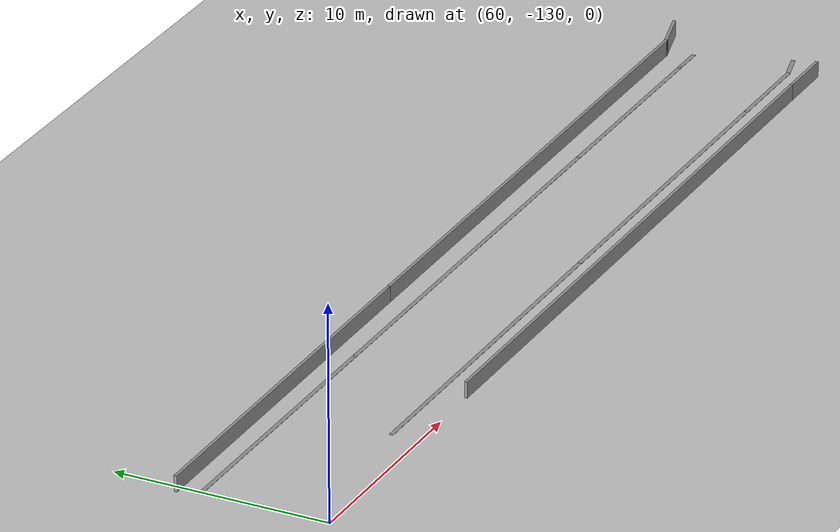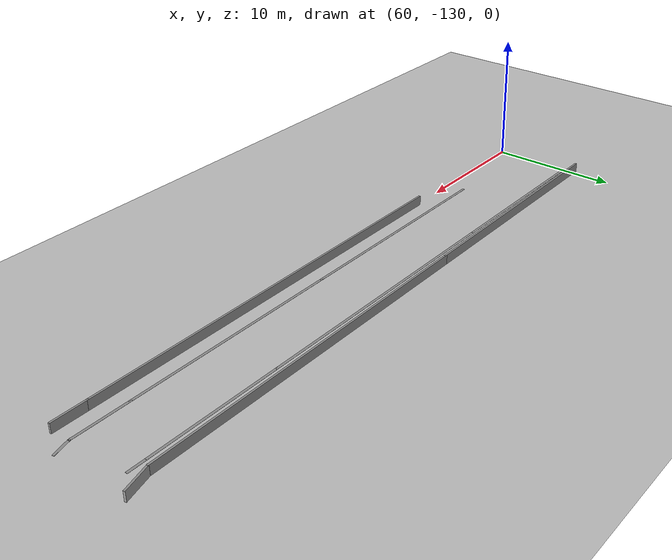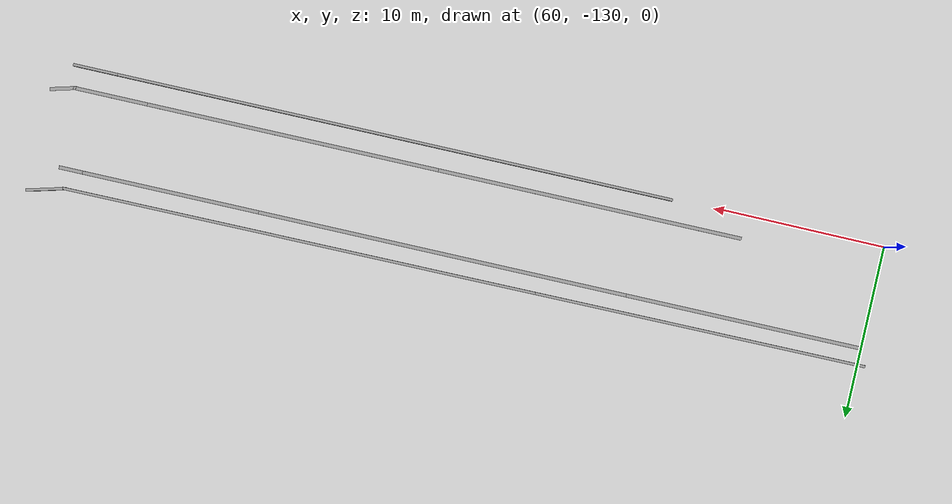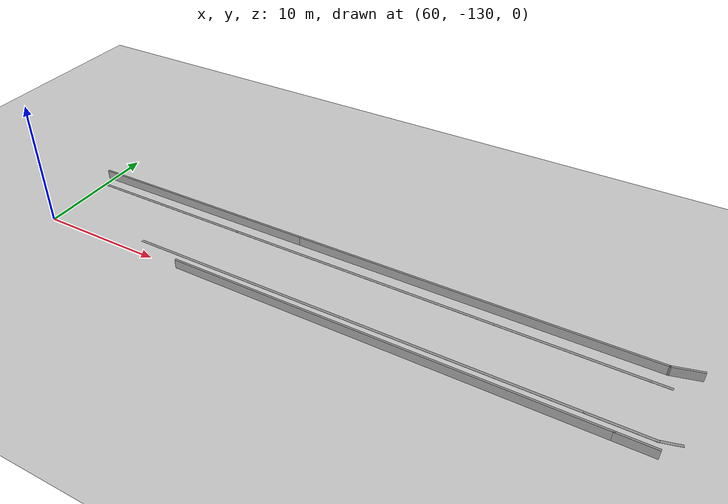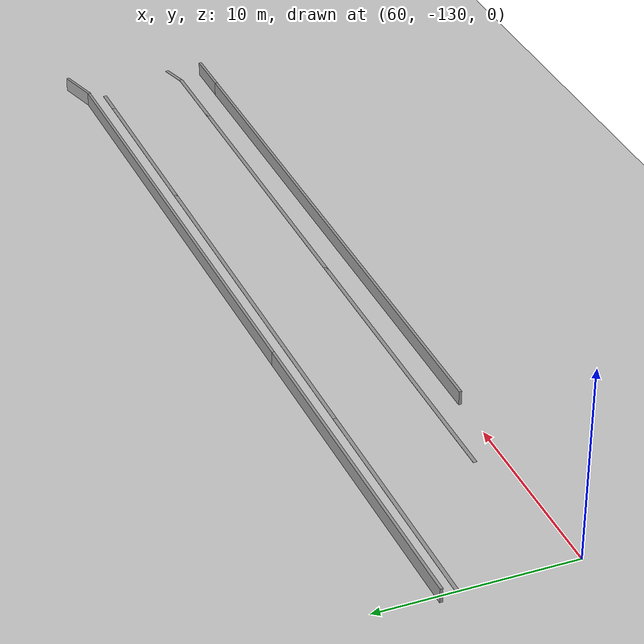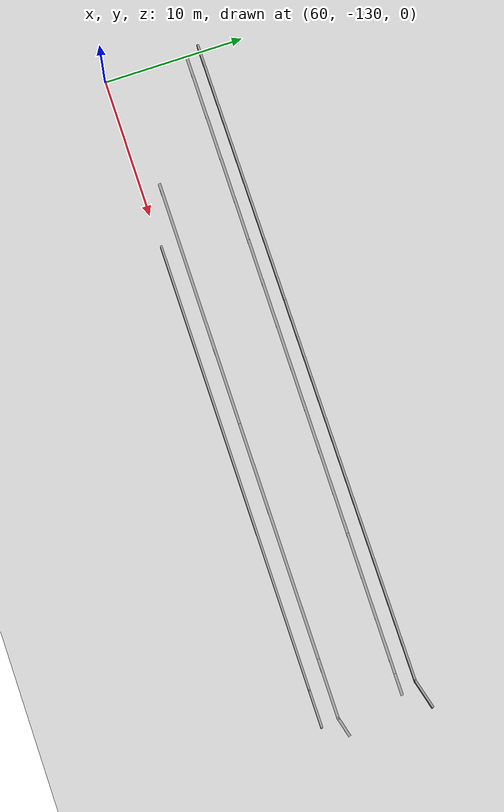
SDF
<sdf version="1.6">
 <world name="default">
  <model name="ground_plane">
   <static>1</static>
   <link name="link">
    <collision name="collision">
     <geometry><plane><normal>0 0 1</normal><size>100 100</size></plane></geometry>
     <surface>
      <contact><collide_bitmask>65535</collide_bitmask></contact>
      <friction><ode><mu>100</mu><mu2>50</mu2></ode></friction>
     </surface>
    </collision>
    <visual name="visual">
     <cast_shadows>0</cast_shadows>
     <geometry><plane><normal>0 0 1</normal><size>100 100</size></plane></geometry>
     <material>
      <script><uri>file://media/materials/scripts/gazebo.material</uri><name>Gazebo/Grey</name></script>
     </material>
    </visual>
   </link>
  </model>
  <model name="GercekDuvarSeritKoyu1">
   <link name="Wall_168">
    <pose>68.3531 9.23141 0 0 -0 1.57445</pose>
    <inertial>
     <mass>1</mass>
     <inertia><ixx>1</ixx><ixy>0</ixy><ixz>0</ixz><iyy>1</iyy><iyz>0</iyz><izz>1</izz></inertia>
    </inertial>
    <visual name="Wall_168_Visual">
     <pose>0 0 0.375 0 -0 0</pose>
     <geometry><box><size>19.2961 0.15 0.75</size></box></geometry>
     <material>
      <script><uri>file://media/materials/scripts/gazebo.material</uri><name>Gazebo/Grey</name></script>
      <ambient>0.5 0.5 0.5 1</ambient>
      <shader type="pixel"><normal_map>__default__</normal_map></shader>
      <diffuse>0.7 0.7 0.7 1</diffuse>
      <specular>0.01 0.01 0.01 1</specular>
      <emissive>0 0 0 1</emissive>
     </material>
     <meta><layer>0</layer></meta>
    </visual>
    <collision name="Wall_168_Collision">
     <pose>0 0 0.375 0 -0 0</pose>
     <geometry><box><size>19.2961 0.15 0.75</size></box></geometry>
     <surface>
      <friction>
       <ode><mu>1</mu><mu2>1</mu2><fdir1>0 0 0</fdir1><slip1>0</slip1><slip2>0</slip2></ode>
       <torsional>
        <coefficient>1</coefficient>
        <patch_radius>0</patch_radius>
        <surface_radius>0</surface_radius>
        <use_patch_radius>1</use_patch_radius>
        <ode><slip>0</slip></ode>
       </torsional>
      </friction>
      <bounce><restitution_coefficient>0</restitution_coefficient><threshold>1e+06</threshold></bounce>
      <contact>
       <collide_without_contact>0</collide_without_contact>
       <collide_without_contact_bitmask>1</collide_without_contact_bitmask>
       <collide_bitmask>1</collide_bitmask>
       <ode>
        <soft_cfm>0</soft_cfm>
        <soft_erp>0.2</soft_erp>
        <kp>1e+13</kp>
        <kd>1</kd>
        <max_vel>0.01</max_vel>
        <min_depth>0</min_depth>
       </ode>
       <bullet>
        <split_impulse>1</split_impulse>
        <split_impulse_penetration_threshold>-0.01</split_impulse_penetration_threshold>
        <soft_cfm>0</soft_cfm>
        <soft_erp>0.2</soft_erp>
        <kp>1e+13</kp>
        <kd>1</kd>
       </bullet>
      </contact>
     </surface>
    </collision>
   </link>
   <link name="Wall_170">
    <pose>68.2721 32.6274 0 0 -0 1.57412</pose>
    <inertial>
     <mass>1</mass>
     <inertia><ixx>1</ixx><ixy>0</ixy><ixz>0</ixz><iyy>1</iyy><iyz>0</iyz><izz>1</izz></inertia>
    </inertial>
    <visual name="Wall_170_Visual">
     <pose>0 0 0.375 0 -0 0</pose>
     <geometry><box><size>27.796 0.15 0.75</size></box></geometry>
     <material>
      <script><uri>file://media/materials/scripts/gazebo.material</uri><name>Gazebo/Grey</name></script>
      <ambient>0.5 0.5 0.5 1</ambient>
      <shader type="pixel"><normal_map>__default__</normal_map></shader>
      <diffuse>0.7 0.7 0.7 1</diffuse>
      <specular>0.01 0.01 0.01 1</specular>
      <emissive>0 0 0 1</emissive>
     </material>
     <meta><layer>0</layer></meta>
    </visual>
    <collision name="Wall_170_Collision">
     <pose>0 0 0.375 0 -0 0</pose>
     <geometry><box><size>27.796 0.15 0.75</size></box></geometry>
     <surface>
      <friction>
       <ode><mu>1</mu><mu2>1</mu2><fdir1>0 0 0</fdir1><slip1>0</slip1><slip2>0</slip2></ode>
       <torsional>
        <coefficient>1</coefficient>
        <patch_radius>0</patch_radius>
        <surface_radius>0</surface_radius>
        <use_patch_radius>1</use_patch_radius>
        <ode><slip>0</slip></ode>
       </torsional>
      </friction>
      <bounce><restitution_coefficient>0</restitution_coefficient><threshold>1e+06</threshold></bounce>
      <contact>
       <collide_without_contact>0</collide_without_contact>
       <collide_without_contact_bitmask>1</collide_without_contact_bitmask>
       <collide_bitmask>1</collide_bitmask>
       <ode>
        <soft_cfm>0</soft_cfm>
        <soft_erp>0.2</soft_erp>
        <kp>1e+13</kp>
        <kd>1</kd>
        <max_vel>0.01</max_vel>
        <min_depth>0</min_depth>
       </ode>
       <bullet>
        <split_impulse>1</split_impulse>
        <split_impulse_penetration_threshold>-0.01</split_impulse_penetration_threshold>
        <soft_cfm>0</soft_cfm>
        <soft_erp>0.2</soft_erp>
        <kp>1e+13</kp>
        <kd>1</kd>
       </bullet>
      </contact>
     </surface>
    </collision>
   </link>
   <link name="Wall_172">
    <pose>67.9541 47.4644 0 0 -0 1.83287</pose>
    <inertial>
     <mass>1</mass>
     <inertia><ixx>1</ixx><ixy>0</ixy><ixz>0</ixz><iyy>1</iyy><iyz>0</iyz><izz>1</izz></inertia>
    </inertial>
    <visual name="Wall_172_Visual">
     <pose>0 0 0.375 0 -0 0</pose>
     <geometry><box><size>2.25 0.15 0.75</size></box></geometry>
     <material>
      <script><uri>file://media/materials/scripts/gazebo.material</uri><name>Gazebo/Grey</name></script>
      <ambient>0.5 0.5 0.5 1</ambient>
      <shader type="pixel"><normal_map>__default__</normal_map></shader>
      <diffuse>0.7 0.7 0.7 1</diffuse>
      <specular>0.01 0.01 0.01 1</specular>
      <emissive>0 0 0 1</emissive>
     </material>
     <meta><layer>0</layer></meta>
    </visual>
    <collision name="Wall_172_Collision">
     <pose>0 0 0.375 0 -0 0</pose>
     <geometry><box><size>2.25 0.15 0.75</size></box></geometry>
     <surface>
      <friction>
       <ode><mu>1</mu><mu2>1</mu2><fdir1>0 0 0</fdir1><slip1>0</slip1><slip2>0</slip2></ode>
       <torsional>
        <coefficient>1</coefficient>
        <patch_radius>0</patch_radius>
        <surface_radius>0</surface_radius>
        <use_patch_radius>1</use_patch_radius>
        <ode><slip>0</slip></ode>
       </torsional>
      </friction>
      <bounce><restitution_coefficient>0</restitution_coefficient><threshold>1e+06</threshold></bounce>
      <contact>
       <collide_without_contact>0</collide_without_contact>
       <collide_without_contact_bitmask>1</collide_without_contact_bitmask>
       <collide_bitmask>1</collide_bitmask>
       <ode>
        <soft_cfm>0</soft_cfm>
        <soft_erp>0.2</soft_erp>
        <kp>1e+13</kp>
        <kd>1</kd>
        <max_vel>0.01</max_vel>
        <min_depth>0</min_depth>
       </ode>
       <bullet>
        <split_impulse>1</split_impulse>
        <split_impulse_penetration_threshold>-0.01</split_impulse_penetration_threshold>
        <soft_cfm>0</soft_cfm>
        <soft_erp>0.2</soft_erp>
        <kp>1e+13</kp>
        <kd>1</kd>
       </bullet>
      </contact>
     </surface>
    </collision>
   </link>
   <link name="Wall_22">
    <pose>75.2501 28.6434 0 0 -0 1.5708</pose>
    <inertial>
     <mass>1</mass>
     <inertia><ixx>1</ixx><ixy>0</ixy><ixz>0</ixz><iyy>1</iyy><iyz>0</iyz><izz>1</izz></inertia>
    </inertial>
    <visual name="Wall_22_Visual">
     <pose>0 0 0.375 0 -0 0</pose>
     <geometry><box><size>32.5 0.15 0.75</size></box></geometry>
     <material>
      <script><uri>file://media/materials/scripts/gazebo.material</uri><name>Gazebo/Grey</name></script>
      <ambient>0.5 0.5 0.5 1</ambient>
      <shader type="pixel"><normal_map>__default__</normal_map></shader>
      <diffuse>0.7 0.7 0.7 1</diffuse>
      <specular>0.01 0.01 0.01 1</specular>
      <emissive>0 0 0 1</emissive>
     </material>
     <meta><layer>0</layer></meta>
    </visual>
    <collision name="Wall_22_Collision">
     <pose>0 0 0.375 0 -0 0</pose>
     <geometry><box><size>32.5 0.15 0.75</size></box></geometry>
     <surface>
      <friction>
       <ode><mu>1</mu><mu2>1</mu2><fdir1>0 0 0</fdir1><slip1>0</slip1><slip2>0</slip2></ode>
       <torsional>
        <coefficient>1</coefficient>
        <patch_radius>0</patch_radius>
        <surface_radius>0</surface_radius>
        <use_patch_radius>1</use_patch_radius>
        <ode><slip>0</slip></ode>
       </torsional>
      </friction>
      <bounce><restitution_coefficient>0</restitution_coefficient><threshold>1e+06</threshold></bounce>
      <contact>
       <collide_without_contact>0</collide_without_contact>
       <collide_without_contact_bitmask>1</collide_without_contact_bitmask>
       <collide_bitmask>1</collide_bitmask>
       <ode>
        <soft_cfm>0</soft_cfm>
        <soft_erp>0.2</soft_erp>
        <kp>1e+13</kp>
        <kd>1</kd>
        <max_vel>0.01</max_vel>
        <min_depth>0</min_depth>
       </ode>
       <bullet>
        <split_impulse>1</split_impulse>
        <split_impulse_penetration_threshold>-0.01</split_impulse_penetration_threshold>
        <soft_cfm>0</soft_cfm>
        <soft_erp>0.2</soft_erp>
        <kp>1e+13</kp>
        <kd>1</kd>
       </bullet>
      </contact>
     </surface>
    </collision>
   </link>
   <link name="Wall_24">
    <pose>75.2501 46.1184 0 0 -0 1.5708</pose>
    <inertial>
     <mass>1</mass>
     <inertia><ixx>1</ixx><ixy>0</ixy><ixz>0</ixz><iyy>1</iyy><iyz>0</iyz><izz>1</izz></inertia>
    </inertial>
    <visual name="Wall_24_Visual">
     <pose>0 0 0.375 0 -0 0</pose>
     <geometry><box><size>2.75 0.15 0.75</size></box></geometry>
     <material>
      <script><uri>file://media/materials/scripts/gazebo.material</uri><name>Gazebo/Grey</name></script>
      <ambient>0.5 0.5 0.5 1</ambient>
      <shader type="pixel"><normal_map>__default__</normal_map></shader>
      <diffuse>0.7 0.7 0.7 1</diffuse>
      <specular>0.01 0.01 0.01 1</specular>
      <emissive>0 0 0 1</emissive>
     </material>
     <meta><layer>0</layer></meta>
    </visual>
    <collision name="Wall_24_Collision">
     <pose>0 0 0.375 0 -0 0</pose>
     <geometry><box><size>2.75 0.15 0.75</size></box></geometry>
     <surface>
      <friction>
       <ode><mu>1</mu><mu2>1</mu2><fdir1>0 0 0</fdir1><slip1>0</slip1><slip2>0</slip2></ode>
       <torsional>
        <coefficient>1</coefficient>
        <patch_radius>0</patch_radius>
        <surface_radius>0</surface_radius>
        <use_patch_radius>1</use_patch_radius>
        <ode><slip>0</slip></ode>
       </torsional>
      </friction>
      <bounce><restitution_coefficient>0</restitution_coefficient><threshold>1e+06</threshold></bounce>
      <contact>
       <collide_without_contact>0</collide_without_contact>
       <collide_without_contact_bitmask>1</collide_without_contact_bitmask>
       <collide_bitmask>1</collide_bitmask>
       <ode>
        <soft_cfm>0</soft_cfm>
        <soft_erp>0.2</soft_erp>
        <kp>1e+13</kp>
        <kd>1</kd>
        <max_vel>0.01</max_vel>
        <min_depth>0</min_depth>
       </ode>
       <bullet>
        <split_impulse>1</split_impulse>
        <split_impulse_penetration_threshold>-0.01</split_impulse_penetration_threshold>
        <soft_cfm>0</soft_cfm>
        <soft_erp>0.2</soft_erp>
        <kp>1e+13</kp>
        <kd>1</kd>
       </bullet>
      </contact>
     </surface>
    </collision>
   </link>
   <link name="Wall_266">
    <pose>73.9771 16.9264 0 0 -0 1.5708</pose>
    <visual name="Wall_266_Visual">
     <pose>0 0 0.005 0 -0 0</pose>
     <geometry><box><size>17.8 0.2 0.01</size></box></geometry>
     <material>
      <script><uri>file://media/materials/scripts/gazebo.material</uri><name>Gazebo/Grey</name></script>
      <ambient>1 1 1 1</ambient>
      <shader type="pixel"/>
     </material>
     <meta><layer>0</layer></meta>
    </visual>
    <collision name="Wall_266_Collision">
     <pose>0 0 0.005 0 -0 0</pose>
     <geometry><box><size>17.8 0.2 0.01</size></box></geometry>
     <surface>
      <friction>
       <ode><mu>1</mu><mu2>1</mu2><fdir1>0 0 0</fdir1><slip1>0</slip1><slip2>0</slip2></ode>
       <torsional>
        <coefficient>1</coefficient>
        <patch_radius>0</patch_radius>
        <surface_radius>0</surface_radius>
        <use_patch_radius>1</use_patch_radius>
        <ode><slip>0</slip></ode>
       </torsional>
      </friction>
      <bounce><restitution_coefficient>0</restitution_coefficient><threshold>1e+06</threshold></bounce>
      <contact>
       <collide_without_contact>0</collide_without_contact>
       <collide_without_contact_bitmask>1</collide_without_contact_bitmask>
       <collide_bitmask>1</collide_bitmask>
       <ode>
        <soft_cfm>0</soft_cfm>
        <soft_erp>0.2</soft_erp>
        <kp>1e+13</kp>
        <kd>1</kd>
        <max_vel>0.01</max_vel>
        <min_depth>0</min_depth>
       </ode>
       <bullet>
        <split_impulse>1</split_impulse>
        <split_impulse_penetration_threshold>-0.01</split_impulse_penetration_threshold>
        <soft_cfm>0</soft_cfm>
        <soft_erp>0.2</soft_erp>
        <kp>1e+13</kp>
        <kd>1</kd>
       </bullet>
      </contact>
     </surface>
    </collision>
   </link>
   <link name="Wall_268">
    <pose>73.9771 34.2764 0 0 -0 1.5708</pose>
    <visual name="Wall_268_Visual">
     <pose>0 0 0.005 0 -0 0</pose>
     <geometry><box><size>17.3 0.2 0.01</size></box></geometry>
     <material>
      <script><uri>file://media/materials/scripts/gazebo.material</uri><name>Gazebo/Grey</name></script>
      <ambient>1 1 1 1</ambient>
      <shader type="pixel"/>
     </material>
     <meta><layer>0</layer></meta>
    </visual>
    <collision name="Wall_268_Collision">
     <pose>0 0 0.005 0 -0 0</pose>
     <geometry><box><size>17.3 0.2 0.01</size></box></geometry>
     <surface>
      <friction>
       <ode><mu>1</mu><mu2>1</mu2><fdir1>0 0 0</fdir1><slip1>0</slip1><slip2>0</slip2></ode>
       <torsional>
        <coefficient>1</coefficient>
        <patch_radius>0</patch_radius>
        <surface_radius>0</surface_radius>
        <use_patch_radius>1</use_patch_radius>
        <ode><slip>0</slip></ode>
       </torsional>
      </friction>
      <bounce><restitution_coefficient>0</restitution_coefficient><threshold>1e+06</threshold></bounce>
      <contact>
       <collide_without_contact>0</collide_without_contact>
       <collide_without_contact_bitmask>1</collide_without_contact_bitmask>
       <collide_bitmask>1</collide_bitmask>
       <ode>
        <soft_cfm>0</soft_cfm>
        <soft_erp>0.2</soft_erp>
        <kp>1e+13</kp>
        <kd>1</kd>
        <max_vel>0.01</max_vel>
        <min_depth>0</min_depth>
       </ode>
       <bullet>
        <split_impulse>1</split_impulse>
        <split_impulse_penetration_threshold>-0.01</split_impulse_penetration_threshold>
        <soft_cfm>0</soft_cfm>
        <soft_erp>0.2</soft_erp>
        <kp>1e+13</kp>
        <kd>1</kd>
       </bullet>
      </contact>
     </surface>
    </collision>
   </link>
   <link name="Wall_270">
    <pose>73.9771 45.0014 0 0 -0 1.5708</pose>
    <visual name="Wall_270_Visual">
     <pose>0 0 0.005 0 -0 0</pose>
     <geometry><box><size>4.55 0.2 0.01</size></box></geometry>
     <material>
      <script><uri>file://media/materials/scripts/gazebo.material</uri><name>Gazebo/Grey</name></script>
      <ambient>1 1 1 1</ambient>
      <shader type="pixel"/>
     </material>
     <meta><layer>0</layer></meta>
    </visual>
    <collision name="Wall_270_Collision">
     <pose>0 0 0.005 0 -0 0</pose>
     <geometry><box><size>4.55 0.2 0.01</size></box></geometry>
     <surface>
      <friction>
       <ode><mu>1</mu><mu2>1</mu2><fdir1>0 0 0</fdir1><slip1>0</slip1><slip2>0</slip2></ode>
       <torsional>
        <coefficient>1</coefficient>
        <patch_radius>0</patch_radius>
        <surface_radius>0</surface_radius>
        <use_patch_radius>1</use_patch_radius>
        <ode><slip>0</slip></ode>
       </torsional>
      </friction>
      <bounce><restitution_coefficient>0</restitution_coefficient><threshold>1e+06</threshold></bounce>
      <contact>
       <collide_without_contact>0</collide_without_contact>
       <collide_without_contact_bitmask>1</collide_without_contact_bitmask>
       <collide_bitmask>1</collide_bitmask>
       <ode>
        <soft_cfm>0</soft_cfm>
        <soft_erp>0.2</soft_erp>
        <kp>1e+13</kp>
        <kd>1</kd>
        <max_vel>0.01</max_vel>
        <min_depth>0</min_depth>
       </ode>
       <bullet>
        <split_impulse>1</split_impulse>
        <split_impulse_penetration_threshold>-0.01</split_impulse_penetration_threshold>
        <soft_cfm>0</soft_cfm>
        <soft_erp>0.2</soft_erp>
        <kp>1e+13</kp>
        <kd>1</kd>
       </bullet>
      </contact>
     </surface>
    </collision>
   </link>
   <link name="Wall_272">
    <pose>73.8026 47.8284 0 0 -0 1.83231</pose>
    <visual name="Wall_272_Visual">
     <pose>0 0 0.005 0 -0 0</pose>
     <geometry><box><size>1.5499 0.2 0.01</size></box></geometry>
     <material>
      <script><uri>file://media/materials/scripts/gazebo.material</uri><name>Gazebo/Grey</name></script>
      <ambient>1 1 1 1</ambient>
      <shader type="pixel"/>
     </material>
     <meta><layer>0</layer></meta>
    </visual>
    <collision name="Wall_272_Collision">
     <pose>0 0 0.005 0 -0 0</pose>
     <geometry><box><size>1.5499 0.2 0.01</size></box></geometry>
     <surface>
      <friction>
       <ode><mu>1</mu><mu2>1</mu2><fdir1>0 0 0</fdir1><slip1>0</slip1><slip2>0</slip2></ode>
       <torsional>
        <coefficient>1</coefficient>
        <patch_radius>0</patch_radius>
        <surface_radius>0</surface_radius>
        <use_patch_radius>1</use_patch_radius>
        <ode><slip>0</slip></ode>
       </torsional>
      </friction>
      <bounce><restitution_coefficient>0</restitution_coefficient><threshold>1e+06</threshold></bounce>
      <contact>
       <collide_without_contact>0</collide_without_contact>
       <collide_without_contact_bitmask>1</collide_without_contact_bitmask>
       <collide_bitmask>1</collide_bitmask>
       <ode>
        <soft_cfm>0</soft_cfm>
        <soft_erp>0.2</soft_erp>
        <kp>1e+13</kp>
        <kd>1</kd>
        <max_vel>0.01</max_vel>
        <min_depth>0</min_depth>
       </ode>
       <bullet>
        <split_impulse>1</split_impulse>
        <split_impulse_penetration_threshold>-0.01</split_impulse_penetration_threshold>
        <soft_cfm>0</soft_cfm>
        <soft_erp>0.2</soft_erp>
        <kp>1e+13</kp>
        <kd>1</kd>
       </bullet>
      </contact>
     </surface>
    </collision>
   </link>
   <link name="Wall_490">
    <pose>69.3511 6.85541 0 0 -0 1.5708</pose>
    <visual name="Wall_490_Visual">
     <pose>0 0 0.005 0 -0 0</pose>
     <geometry><box><size>13.8 0.2 0.01</size></box></geometry>
     <material>
      <script><uri>file://media/materials/scripts/gazebo.material</uri><name>Gazebo/Grey</name></script>
      <ambient>1 1 1 1</ambient>
      <shader type="pixel"/>
     </material>
     <meta><layer>0</layer></meta>
    </visual>
    <collision name="Wall_490_Collision">
     <pose>0 0 0.005 0 -0 0</pose>
     <geometry><box><size>13.8 0.2 0.01</size></box></geometry>
     <surface>
      <friction>
       <ode><mu>1</mu><mu2>1</mu2><fdir1>0 0 0</fdir1><slip1>0</slip1><slip2>0</slip2></ode>
       <torsional>
        <coefficient>1</coefficient>
        <patch_radius>0</patch_radius>
        <surface_radius>0</surface_radius>
        <use_patch_radius>1</use_patch_radius>
        <ode><slip>0</slip></ode>
       </torsional>
      </friction>
      <bounce><restitution_coefficient>0</restitution_coefficient><threshold>1e+06</threshold></bounce>
      <contact>
       <collide_without_contact>0</collide_without_contact>
       <collide_without_contact_bitmask>1</collide_without_contact_bitmask>
       <collide_bitmask>1</collide_bitmask>
       <ode>
        <soft_cfm>0</soft_cfm>
        <soft_erp>0.2</soft_erp>
        <kp>1e+13</kp>
        <kd>1</kd>
        <max_vel>0.01</max_vel>
        <min_depth>0</min_depth>
       </ode>
       <bullet>
        <split_impulse>1</split_impulse>
        <split_impulse_penetration_threshold>-0.01</split_impulse_penetration_threshold>
        <soft_cfm>0</soft_cfm>
        <soft_erp>0.2</soft_erp>
        <kp>1e+13</kp>
        <kd>1</kd>
       </bullet>
      </contact>
     </surface>
    </collision>
   </link>
   <link name="Wall_492">
    <pose>69.3511 24.4554 0 0 -0 1.5708</pose>
    <visual name="Wall_492_Visual">
     <pose>0 0 0.005 0 -0 0</pose>
     <geometry><box><size>21.8 0.2 0.01</size></box></geometry>
     <material>
      <script><uri>file://media/materials/scripts/gazebo.material</uri><name>Gazebo/Grey</name></script>
      <ambient>1 1 1 1</ambient>
      <shader type="pixel"/>
     </material>
     <meta><layer>0</layer></meta>
    </visual>
    <collision name="Wall_492_Collision">
     <pose>0 0 0.005 0 -0 0</pose>
     <geometry><box><size>21.8 0.2 0.01</size></box></geometry>
     <surface>
      <friction>
       <ode><mu>1</mu><mu2>1</mu2><fdir1>0 0 0</fdir1><slip1>0</slip1><slip2>0</slip2></ode>
       <torsional>
        <coefficient>1</coefficient>
        <patch_radius>0</patch_radius>
        <surface_radius>0</surface_radius>
        <use_patch_radius>1</use_patch_radius>
        <ode><slip>0</slip></ode>
       </torsional>
      </friction>
      <bounce><restitution_coefficient>0</restitution_coefficient><threshold>1e+06</threshold></bounce>
      <contact>
       <collide_without_contact>0</collide_without_contact>
       <collide_without_contact_bitmask>1</collide_without_contact_bitmask>
       <collide_bitmask>1</collide_bitmask>
       <ode>
        <soft_cfm>0</soft_cfm>
        <soft_erp>0.2</soft_erp>
        <kp>1e+13</kp>
        <kd>1</kd>
        <max_vel>0.01</max_vel>
        <min_depth>0</min_depth>
       </ode>
       <bullet>
        <split_impulse>1</split_impulse>
        <split_impulse_penetration_threshold>-0.01</split_impulse_penetration_threshold>
        <soft_cfm>0</soft_cfm>
        <soft_erp>0.2</soft_erp>
        <kp>1e+13</kp>
        <kd>1</kd>
       </bullet>
      </contact>
     </surface>
    </collision>
   </link>
   <link name="Wall_494">
    <pose>69.3511 40.4304 0 0 -0 1.5708</pose>
    <visual name="Wall_494_Visual">
     <pose>0 0 0.005 0 -0 0</pose>
     <geometry><box><size>10.55 0.2 0.01</size></box></geometry>
     <material>
      <script><uri>file://media/materials/scripts/gazebo.material</uri><name>Gazebo/Grey</name></script>
      <ambient>1 1 1 1</ambient>
      <shader type="pixel"/>
     </material>
     <meta><layer>0</layer></meta>
    </visual>
    <collision name="Wall_494_Collision">
     <pose>0 0 0.005 0 -0 0</pose>
     <geometry><box><size>10.55 0.2 0.01</size></box></geometry>
     <surface>
      <friction>
       <ode><mu>1</mu><mu2>1</mu2><fdir1>0 0 0</fdir1><slip1>0</slip1><slip2>0</slip2></ode>
       <torsional>
        <coefficient>1</coefficient>
        <patch_radius>0</patch_radius>
        <surface_radius>0</surface_radius>
        <use_patch_radius>1</use_patch_radius>
        <ode><slip>0</slip></ode>
       </torsional>
      </friction>
      <bounce><restitution_coefficient>0</restitution_coefficient><threshold>1e+06</threshold></bounce>
      <contact>
       <collide_without_contact>0</collide_without_contact>
       <collide_without_contact_bitmask>1</collide_without_contact_bitmask>
       <collide_bitmask>1</collide_bitmask>
       <ode>
        <soft_cfm>0</soft_cfm>
        <soft_erp>0.2</soft_erp>
        <kp>1e+13</kp>
        <kd>1</kd>
        <max_vel>0.01</max_vel>
        <min_depth>0</min_depth>
       </ode>
       <bullet>
        <split_impulse>1</split_impulse>
        <split_impulse_penetration_threshold>-0.01</split_impulse_penetration_threshold>
        <soft_cfm>0</soft_cfm>
        <soft_erp>0.2</soft_erp>
        <kp>1e+13</kp>
        <kd>1</kd>
       </bullet>
      </contact>
     </surface>
    </collision>
   </link>
   <link name="Wall_496">
    <pose>69.3511 46.2894 0 0 -0 1.5708</pose>
    <visual name="Wall_496_Visual">
     <pose>0 0 0.005 0 -0 0</pose>
     <geometry><box><size>1.568 0.2 0.01</size></box></geometry>
     <material>
      <script><uri>file://media/materials/scripts/gazebo.material</uri><name>Gazebo/Grey</name></script>
      <ambient>1 1 1 1</ambient>
      <shader type="pixel"/>
     </material>
     <meta><layer>0</layer></meta>
    </visual>
    <collision name="Wall_496_Collision">
     <pose>0 0 0.005 0 -0 0</pose>
     <geometry><box><size>1.568 0.2 0.01</size></box></geometry>
     <surface>
      <friction>
       <ode><mu>1</mu><mu2>1</mu2><fdir1>0 0 0</fdir1><slip1>0</slip1><slip2>0</slip2></ode>
       <torsional>
        <coefficient>1</coefficient>
        <patch_radius>0</patch_radius>
        <surface_radius>0</surface_radius>
        <use_patch_radius>1</use_patch_radius>
        <ode><slip>0</slip></ode>
       </torsional>
      </friction>
      <bounce><restitution_coefficient>0</restitution_coefficient><threshold>1e+06</threshold></bounce>
      <contact>
       <collide_without_contact>0</collide_without_contact>
       <collide_without_contact_bitmask>1</collide_without_contact_bitmask>
       <collide_bitmask>1</collide_bitmask>
       <ode>
        <soft_cfm>0</soft_cfm>
        <soft_erp>0.2</soft_erp>
        <kp>1e+13</kp>
        <kd>1</kd>
        <max_vel>0.01</max_vel>
        <min_depth>0</min_depth>
       </ode>
       <bullet>
        <split_impulse>1</split_impulse>
        <split_impulse_penetration_threshold>-0.01</split_impulse_penetration_threshold>
        <soft_cfm>0</soft_cfm>
        <soft_erp>0.2</soft_erp>
        <kp>1e+13</kp>
        <kd>1</kd>
       </bullet>
      </contact>
     </surface>
    </collision>
   </link>
   <static>1</static>
   <pose>59.9324 -54.7034 -0 0 0 -1.5695</pose>
  </model>
 </world>
</sdf>
